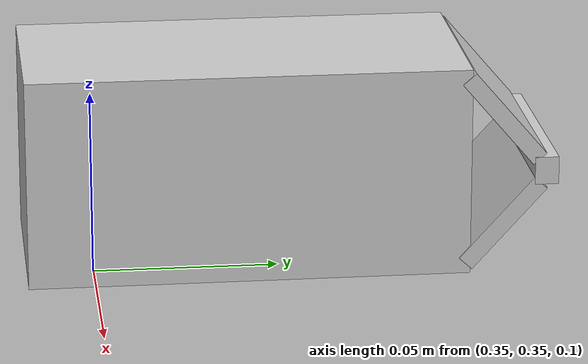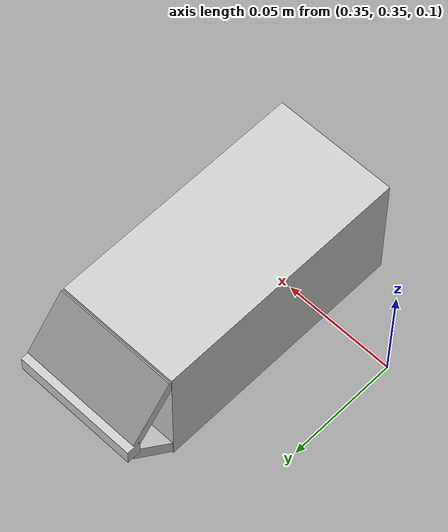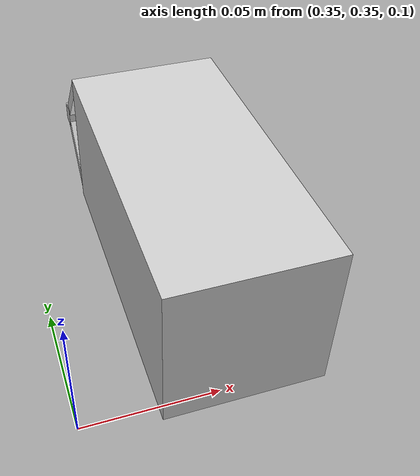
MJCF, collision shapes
<?xml version='1.0' encoding='utf-8'?>
<mujoco>
  <compiler autolimits="true" />
  <default>
    <geom density="1200" />
  </default>
  <asset>
    <texture file="/root/repo/LIBERO/libero/libero/assets/stable_hope_objects/orange_juice/texture_map.png" name="p0_tex-textured" type="2d" />
    <material name="p0_textured" reflectance="0.5" texrepeat="1 1" texture="p0_tex-textured" texuniform="false" />
    <mesh file="/root/repo/LIBERO/libero/libero/assets/stable_hope_objects/orange_juice/visual/textured_vis.msh" name="p0_textured_vis" scale="0.0075 0.0075 0.0075" />
  </asset>
  <worldbody>
    <body pos="0.4 0.4 0.15" quat="1.0 0.0 0.0 0.0">
      <body name="p0_object">
        <geom solimp="0.998 0.998 0.001" solref="0.001 1" density="100" friction="0.95 0.3 0.1" type="mesh" mesh="p0_textured_vis" conaffinity="0" contype="0" group="1" material="p0_textured" />
        <geom solimp="0.998 0.998 0.001" solref="0.001 1" density="100" friction="0.95 0.3 0.1" type="box" pos="-0.00037 -0.01500 0.00000" quat="0.70711 0.70711 0.00000 -0.00000" size="0.02625 0.02625 0.05475" group="0" rgba="0.8 0.8 0.8 0.3" />
        <geom solimp="0.998 0.998 0.001" solref="0.001 1" density="100" friction="0.95 0.3 0.1" type="box" pos="-0.00005 0.04784 -0.01352" quat="0.28687 -0.64630 -0.28687 0.64630" size="0.00218 0.01381 0.02631" group="0" rgba="0.8 0.8 0.8 0.3" />
        <geom solimp="0.998 0.998 0.001" solref="0.001 1" density="100" friction="0.95 0.3 0.1" type="box" pos="-0.00005 0.04784 0.01344" quat="0.29630 0.64203 -0.29630 -0.64203" size="0.00218 0.01381 0.02631" group="0" rgba="0.8 0.8 0.8 0.3" />
        <geom solimp="0.998 0.998 0.001" solref="0.001 1" density="100" friction="0.95 0.3 0.1" type="box" pos="-0.00005 0.05849 -0.00005" quat="0.50000 0.50000 -0.50000 -0.50000" size="0.00295 0.00348 0.02650" group="0" rgba="0.8 0.8 0.8 0.3" />
      </body>
      <site rgba="0 0 0 0" size="0.005" pos="0 0 -0.06" name="p0_bottom_site" />
      <site rgba="0 0 0 0" size="0.005" pos="0 0 0.04" name="p0_top_site" />
      <site rgba="0 0 0 0" size="0.005" pos="0.025 0.025 0" name="p0_horizontal_radius_site" />
      <freejoint />
    </body>
  </worldbody>
</mujoco>
